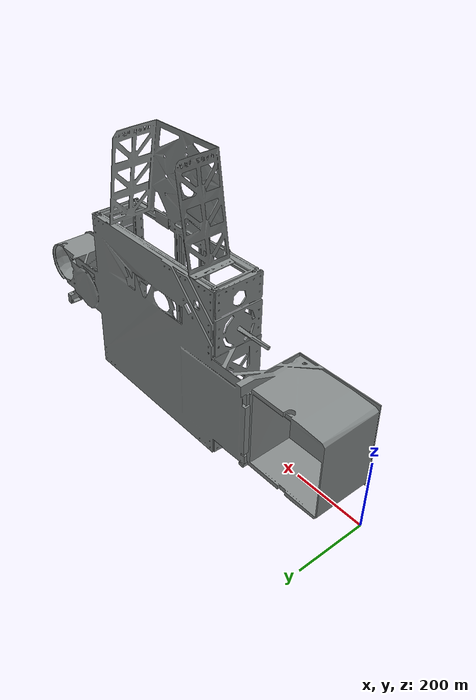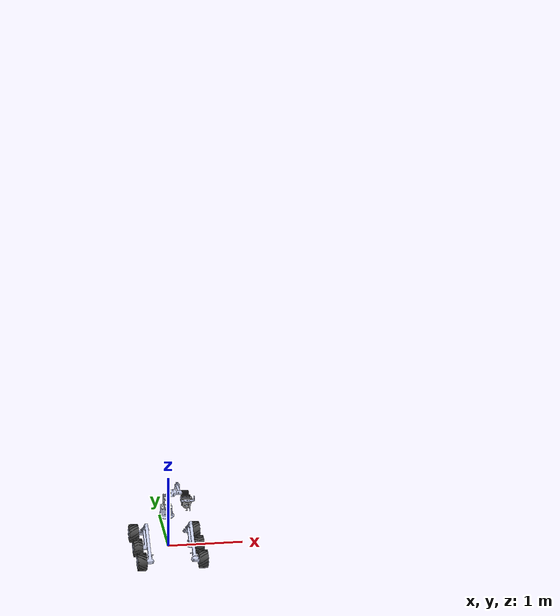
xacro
<?xml version="1.0"?>
<robot xmlns:xacro="http://www.ros.org/wiki/xacro" name="roar_full">

  <!-- The physical structure of the rover (chassis, wheels, transmissions) -->
  <xacro:include filename="$(find roar_simulation_full)/urdf/base/rover.xacro" />

  <!-- The physical structure of the arm (links, joints, transmissions) -->
  <xacro:include filename="$(find roar_simulation_full)/urdf/arm/arm.xacro" />

  <!-- First, build the physical rover base. -->
  <xacro:rover_base />

  <!-- Second, build the physical robotic arm. We use an empty prefix. -->
  <xacro:robotic_arm prefix="" />

  <!-- Third, create the "stitching" joint that rigidly connects the arm to the rover.
       This is the critical step that merges the two modules. -->
  <joint name="arm_mount_joint" type="fixed">
    <parent link="arm_mount_point" /> <!-- The connection point exposed by rover.xacro -->
    <child link="base_arm" />          <!-- The root link of the arm from arm.xacro -->
    <origin xyz="0 0 0" rpy="0 0 0" />  <!-- The offset is already defined in the arm_mount_point joint -->
  </joint>

</robot>

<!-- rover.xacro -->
<robot xmlns:xacro="http://www.ros.org/wiki/xacro" name="roar_rover">

  <xacro:include filename="$(find roar_simulation_full)/urdf/base/rover_control.xacro" />

  <xacro:macro name="rover_base">

    <link name="base_link">
      <inertial>
        <origin xyz="0.00469098688936509 -0.0777682848151969 0.324101627417335" rpy="0 0 0" />
        <mass value="10.0" />
        <inertia ixx="0.1" ixy="0.0" ixz="0.0" iyy="0.1" iyz="0.0" izz="0.1" />
      </inertial>
      <visual>
        <origin xyz="0 0 0" rpy="0 0 0" />
        <geometry>
          <mesh filename="file://$(find roar_simulation_full)/meshes/rover/base_link_visual.STL" />
        </geometry>
        <material name="light_grey">
          <color rgba="0.52941 0.54901 0.54901 1" />
        </material>
      </visual>
      <collision>
        <origin xyz="0 0 0" rpy="0 0 0" />
        <geometry>
          <mesh filename="file://$(find roar_simulation_full)/meshes/rover/base_link_collision.STL" />
        </geometry>
      </collision>
    </link>

    <link name="rocker_rhs">
      <inertial>
        <origin xyz="0.356634879782049 0.249567425783871 0.0168797911183071" rpy="0 0 0" />
        <mass value="1.55415245354649" />
        <inertia ixx="0.00304699343681013" ixy="-0.00122725683108501" ixz="-6.78110157247864E-05" iyy="0.00431671461496656" iyz="-4.53350583239748E-05" izz="0.00469688805108083" />
      </inertial>
      <visual>
        <origin xyz="0 0 0" rpy="0 0 0" />
        <geometry>
          <mesh filename="file://$(find roar_simulation_full)/meshes/rover/rocker_rhs_visual.STL" />
        </geometry>
        <material name="light_blue">
          <color rgba="0.79215 0.81960 0.93333 1" />
        </material>
      </visual>
      <collision>
        <origin xyz="0 0 0" rpy="0 0 0" />
        <geometry>
          <mesh filename="file://$(find roar_simulation_full)/meshes/rover/rocker_rhs_collision.STL" />
        </geometry>
      </collision>
    </link>

    <joint name="rocker_rhs_joint" type="fixed">
      <origin xyz="0.341 -0.00441357789442404 0.318458529702179" rpy="-1.5707963267949 0.0269760214941811 -1.5707963267949" />
      <parent link="base_link" />
      <child link="rocker_rhs" />
      <axis xyz="0 0 -1" />
    </joint>

    <link name="bogie_rhs">
      <inertial>
        <origin xyz="0.000413252708581058 0.147072285784854 0.121779882797586" rpy="0 0 0" />
        <mass value="2.56788752987332" />
        <inertia ixx="0.00417595671889658" ixy="-2.40383932788247E-07" ixz="7.46152900476444E-08" iyy="0.00445750777097546" iyz="-9.37581657450096E-05" izz="0.00354223475883779" />
      </inertial>
      <visual>
        <origin xyz="0 0 0" rpy="0 0 0" />
        <geometry>
          <mesh filename="file://$(find roar_simulation_full)/meshes/rover/bogie_rhs_visual.STL" />
        </geometry>
        <material name="light_blue">
          <color rgba="0.79215 0.81960 0.93333 1" />
        </material>
      </visual>
      <collision>
        <origin xyz="0 0 0" rpy="0 0 0" />
        <geometry>
          <mesh filename="file://$(find roar_simulation_full)/meshes/rover/bogie_rhs_collision.STL" />
        </geometry>
      </collision>
    </link>

    <joint name="bogie_rhs_joint" type="fixed">
      <origin xyz="-0.224229060097619 0.165122592734234 -0.0928547999999997" rpy="0 0 -0.03" />
      <parent link="rocker_rhs" />
      <child link="bogie_rhs" />
      <axis xyz="0 0 -1" />
    </joint>

    <link name="wheel_rhs_mid">
      <inertial>
        <origin xyz="3.05311331771918E-16 -0.00031009853866483 0.0600063600245654" rpy="0 0 0" />
        <mass value="1.5976653768916" />
        <inertia ixx="0.00836783341696594" ixy="7.18283939271647E-18" ixz="-5.84071446049636E-16" iyy="0.00836775197998545" iyz="-6.24418083574133E-14" izz="0.013244679799626" />
      </inertial>
      <visual>
        <origin xyz="0 0 0" rpy="0 0 0" />
        <geometry>
          <mesh filename="file://$(find roar_simulation_full)/meshes/rover/wheel_rhs_mid.STL" />
        </geometry>
        <material name="dark_grey">
          <color rgba="0.29803 0.29803 0.29803 1" />
        </material>
      </visual>
      <collision>
        <origin xyz="0 0 0" rpy="0 0 0" />
        <geometry>
          <mesh filename="file://$(find roar_simulation_full)/meshes/rover/wheel_rhs_mid_collision.STL" />
        </geometry>
      </collision>
    </link>

    <joint name="wheel_rhs_mid_joint" type="continuous">
      <origin xyz="0.229224601627686 0.160798282710695 0.105843639709434" rpy="0 0 3.12607538350607" />
      <parent link="bogie_rhs" />
      <child link="wheel_rhs_mid" />
      <axis xyz="0 0 -1" />
    </joint>

    <link name="wheel_rhs_front">
      <inertial>
        <origin xyz="-6.28397432798078E-05 -0.000299207692801798 0.0617344385469731" rpy="0 0 0" />
        <mass value="1.55166626304694" />
        <inertia ixx="0.00800333028314918" ixy="-1.61745154658915E-08" ixz="5.54140420044703E-13" iyy="0.00800325666613796" iyz="2.637538385541E-12" izz="0.0125934306153833" />
      </inertial>
      <visual>
        <origin xyz="0 0 0" rpy="0 0 0" />
        <geometry>
          <mesh filename="file://$(find roar_simulation_full)/meshes/rover/wheel_rhs_front.STL" />
        </geometry>
        <material name="dark_grey">
          <color rgba="0.29803 0.29803 0.29803 1" />
        </material>
      </visual>
      <collision>
        <origin xyz="0 0 0" rpy="0 0 0" />
        <geometry>
          <mesh filename="file://$(find roar_simulation_full)/meshes/rover/wheel_rhs_front_collision.STL" />
        </geometry>
      </collision>
    </link>

    <joint name="wheel_rhs_front_joint" type="continuous">
      <origin xyz="-0.229500390800753 0.160404414952893 0.104120372913068" rpy="0 0 -3.14159265358979" />
      <parent link="bogie_rhs" />
      <child link="wheel_rhs_front" />
      <axis xyz="0 0 -1" />
    </joint>

    <link name="wheel_rhs_rear">
      <inertial>
        <origin xyz="5.16253706450698E-15 0.00015154563885042 0.0600149113817935" rpy="0 0 0" />
        <mass value="1.55167119278224" />
        <inertia ixx="0.00800323403290157" ixy="-1.03184896315713E-16" ixz="-1.94336817583681E-17" iyy="0.00800315362181799" iyz="-1.09712890180285E-10" izz="0.0125935069824427" />
      </inertial>
      <visual>
        <origin xyz="0 0 0" rpy="0 0 0" />
        <geometry>
          <mesh filename="file://$(find roar_simulation_full)/meshes/rover/wheel_rhs_rear.STL" />
        </geometry>
        <material name="dark_grey">
          <color rgba="0.29803 0.29803 0.29803 1" />
        </material>
      </visual>
      <collision>
        <origin xyz="0 0 0" rpy="0 0 0" />
        <geometry>
          <mesh filename="file://$(find roar_simulation_full)/meshes/rover/wheel_rhs_rear_collision.STL" />
        </geometry>
      </collision>
    </link>

    <joint name="wheel_rhs_rear_joint" type="continuous">
      <origin xyz="0.46794017955705 0.307105950932406 0.0129798220506307" rpy="0 0 3.14159265358979" />
      <parent link="rocker_rhs" />
      <child link="wheel_rhs_rear" />
      <axis xyz="0 0 -1" />
    </joint>

    <link name="rocker_lhs">
      <inertial>
        <origin xyz="0.355676246263101 -0.251011188160812 0.114353485211955" rpy="0 0 0" />
        <mass value="1.55450623077954" />
        <inertia ixx="0.00304702979065891" ixy="0.00122725847821496" ixz="-6.7805504639355E-05" iyy="0.00431674151222301" iyz="4.53438210665476E-05" izz="0.00469693111237126" />
      </inertial>
      <visual>
        <origin xyz="0 0 0" rpy="0 0 0" />
        <geometry>
          <mesh filename="file://$(find roar_simulation_full)/meshes/rover/rocker_lhs_visual.STL" />
        </geometry>
        <material name="light_blue">
          <color rgba="0.79215 0.81960 0.93333 1" />
        </material>
      </visual>
      <collision>
        <origin xyz="0 0 0" rpy="0 0 0" />
        <geometry>
          <mesh filename="file://$(find roar_simulation_full)/meshes/rover/rocker_lhs.STL" />
        </geometry>
      </collision>
    </link>

    <joint name="rocker_lhs_joint" type="fixed">
      <origin xyz="-0.244499999999996 -0.00517486124912506 0.320045490177976" rpy="1.5707963267949 0.0269760214941811 -1.5707963267949" />
      <parent link="base_link" />
      <child link="rocker_lhs" />
      <axis xyz="0 0 1" />
    </joint>

    <link name="bogie_lhs">
      <inertial>
        <origin xyz="0.00196274820164133 -0.147059768544191 0.121779882817316" rpy="0 0 0" />
        <mass value="2.56788753304685" />
        <inertia ixx="0.0041760379642359" ixy="-4.78811399342551E-06" ixz="-1.58926496416294E-06" iyy="0.00445742650894979" iyz="9.37447259554026E-05" izz="0.00354223473986378" />
      </inertial>
      <visual>
        <origin xyz="0 0 0" rpy="0 0 0" />
        <geometry>
          <mesh filename="file://$(find roar_simulation_full)/meshes/rover/bogie_lhs_visual.STL" />
        </geometry>
        <material name="light_blue">
          <color rgba="0.79215 0.81960 0.93333 1" />
        </material>
      </visual>
      <collision>
        <origin xyz="0 0 0" rpy="0 0 0" />
        <geometry>
          <mesh filename="file://$(find roar_simulation_full)/meshes/rover/bogie_lhs_collision.STL" />
        </geometry>
      </collision>
    </link>

    <joint name="bogie_lhs_joint" type="fixed">
      <origin xyz="-0.224947261786088 -0.16672950973041 0.00464519999999913" rpy="0 0 0" />
      <parent link="rocker_lhs" />
      <child link="bogie_lhs" />
      <axis xyz="0 0 -1" />
    </joint>

    <link name="wheel_lhs_mid">
      <inertial>
        <origin xyz="8.32667268468867E-17 0.000310098538664483 0.0600061613680265" rpy="0 0 0" />
        <mass value="1.59766537689161" />
        <inertia ixx="0.00836783341696616" ixy="1.29476733188556E-16" ixz="-2.78394080503685E-16" iyy="0.00836775197998588" iyz="-6.25104164123782E-14" izz="0.0132446797996265" />
      </inertial>
      <visual>
        <origin xyz="0 0 0" rpy="0 0 0" />
        <geometry>
          <mesh filename="file://$(find roar_simulation_full)/meshes/rover/wheel_lhs_mid.STL" />
        </geometry>
        <material name="dark_grey">
          <color rgba="0.29803 0.29803 0.29803 1" />
        </material>
      </visual>
      <collision>
        <origin xyz="0 0 0" rpy="0 0 0" />
        <geometry>
          <mesh filename="file://$(find roar_simulation_full)/meshes/rover/wheel_lhs_mid_collision.STL" />
        </geometry>
      </collision>
    </link>

    <joint name="wheel_lhs_mid_joint" type="continuous">
      <origin xyz="0.232061767651008 -0.156675912982079 0.105848638897971" rpy="0 0 3.14159265358979" />
      <parent link="bogie_lhs" />
      <child link="wheel_lhs_mid" />
      <axis xyz="0 0 1" />
    </joint>

    <link name="wheel_lhs_front">
      <inertial>
        <origin xyz="4.44089209850063E-16 0.000305735786541028 0.060015644846366" rpy="0 0 0" />
        <mass value="1.55167119278224" />
        <inertia ixx="0.0080032340329016" ixy="8.92343020906058E-17" ixz="-4.04328578482084E-17" iyy="0.00800315362181802" iyz="-1.09712873056732E-10" izz="0.0125935069824427" />
      </inertial>
      <visual>
        <origin xyz="0 0 0" rpy="0 0 0" />
        <geometry>
          <mesh filename="file://$(find roar_simulation_full)/meshes/rover/wheel_lhs_front.STL" />
        </geometry>
        <material name="dark_grey">
          <color rgba="0.29803 0.29803 0.29803 1" />
        </material>
      </visual>
      <collision>
        <origin xyz="0 0 0" rpy="0 0 0" />
        <geometry>
          <mesh filename="file://$(find roar_simulation_full)/meshes/rover/wheel_lhs_front_collision.STL" />
        </geometry>
      </collision>
    </link>

    <joint name="wheel_lhs_front_joint" type="continuous">
      <origin xyz="-0.226596998316561 -0.164480412414379 0.105834821721209" rpy="0 0 3.14159265358979" />
      <parent link="bogie_lhs" />
      <child link="wheel_lhs_front" />
      <axis xyz="0 0 1" />
    </joint>

    <link name="wheel_lhs_rear">
      <inertial>
        <origin xyz="3.33066907387547E-16 0.000305735305071581 0.0617344149234693" rpy="0 0 0" />
        <mass value="1.55166626304695" />
        <inertia ixx="0.00800333368012843" ixy="1.76843939308345E-16" ixz="4.18511383343929E-16" iyy="0.00800325326915781" iyz="2.69448778130305E-12" izz="0.0125934306153827" />
      </inertial>
      <visual>
        <origin xyz="0 0 0" rpy="0 0 0" />
        <geometry>
          <mesh filename="file://$(find roar_simulation_full)/meshes/rover/wheel_lhs_rear.STL" />
        </geometry>
        <material name="dark_grey">
          <color rgba="0.29803 0.29803 0.29803 1" />
        </material>
      </visual>
      <collision>
        <origin xyz="0 0 0" rpy="0 0 0" />
        <geometry>
          <mesh filename="file://$(find roar_simulation_full)/meshes/rover/wheel_lhs_rear_collision.STL" />
        </geometry>
      </collision>
    </link>

    <joint name="wheel_lhs_rear_joint" type="continuous">
      <origin xyz="0.467221977868636 -0.308712867928559 0.108765573616487" rpy="0 0 3.14159265358979" />
      <parent link="rocker_lhs" />
      <child link="wheel_lhs_rear" />
      <axis xyz="0 0 1" />
    </joint>

    <link name="arm_mount_point"/>

    <joint name="rover_to_arm_mount" type="fixed">
      <parent link="base_link"/>
      <child link="arm_mount_point"/>
      <origin xyz="0.0 0.25 0.33" rpy="0 0 1.57"/>
    </joint>

    <xacro:rover_control />

  </xacro:macro>
</robot>

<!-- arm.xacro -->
<robot xmlns:xacro="http://www.ros.org/wiki/xacro" name="roar_arm">

  <xacro:macro name="robotic_arm" params="prefix">

    <link name="${prefix}base_arm">
      <inertial>
        <origin xyz="5.2096E-17 -5.1794E-16 0.067119" rpy="0 0 0" />
        <mass value="1.3975" />
        <inertia ixx="0.0060529" ixy="-7.9663E-19" ixz="1.4318E-18" iyy="0.0060532" iyz="-3.072E-17" izz="0.0086379" />
      </inertial>
      <visual>
        <origin xyz="0 0 0" rpy="0 0 0" />
        <geometry>
          <mesh filename="file://$(find roar_simulation)/meshes/arm/base_arm.STL" />
        </geometry>
        <material name="">
          <color rgba="0.79216 0.81961 0.93333 1" />
        </material>
      </visual>
      <collision>
        <origin xyz="0 0 0" rpy="0 0 0" />
        <geometry>
          <mesh filename="file://$(find roar_simulation)/meshes/arm/base_arm.STL" />
        </geometry>
      </collision>
    </link>

    <link name="${prefix}link_1">
      <inertial>
        <origin xyz="-0.015423 0.00053292 0.076165" rpy="0 0 0" />
        <mass value="0.69946" />
        <inertia ixx="0.0012889" ixy="9.1195E-07" ixz="-0.00011148" iyy="0.0019852" iyz="-6.3597E-06" izz="0.0013797" />
      </inertial>
      <visual>
        <origin xyz="0 0 0" rpy="0 0 0" />
        <geometry>
          <mesh filename="file://$(find roar_simulation)/meshes/arm/link_1.STL" />
        </geometry>
        <material name="">
          <color rgba="0.89804 0.91765 0.92941 1" />
        </material>
      </visual>
      <collision>
        <origin xyz="0 0 0" rpy="0 0 0" />
        <geometry>
          <mesh filename="file://$(find roar_simulation)/meshes/arm/link_1.STL" />
        </geometry>
      </collision>
    </link>
    <joint name="${prefix}joint_1" type="fixed">
      <origin xyz="0 0 0.133" rpy="0 0 0" />
      <parent link="${prefix}base_arm" />
      <child link="${prefix}link_1" />
      <axis xyz="0 0 1" />
    </joint>

    <link name="${prefix}link_2">
      <inertial>
        <origin xyz="-0.00045755 0.40328 0.043283" rpy="0 0 0" />
        <mass value="0.4979" />
        <inertia ixx="0.0016855" ixy="5.5179E-06" ixz="8.2239E-07" iyy="0.0004916" iyz="-3.1358E-05" izz="0.0016038" />
      </inertial>
      <visual>
        <origin xyz="0 0 0" rpy="0 0 0" />
        <geometry>
          <mesh filename="file://$(find roar_simulation)/meshes/arm/link_2.STL" />
        </geometry>
        <material name="">
          <color rgba="0.79216 0.81961 0.93333 1" />
        </material>
      </visual>
      <collision>
        <origin xyz="0 0 0" rpy="0 0 0" />
        <geometry>
          <mesh filename="file://$(find roar_simulation)/meshes/arm/link_2.STL" />
        </geometry>
      </collision>
    </link>
    <joint name="${prefix}joint_2" type="fixed">
      <origin xyz="0.035502 0 0.1489" rpy="1.6351 -1.0672 -0.073404" />
      <parent link="${prefix}link_1" />
      <child link="${prefix}link_2" />
      <axis xyz="0.035393 0 0.99937" />
    </joint>

    <link name="${prefix}link_3">
      <inertial>
        <origin xyz="-0.000291 -0.019482 0.039042" rpy="0 0 0" />
        <mass value="0.7923" />
        <inertia ixx="0.0012569" ixy="-2.4571E-06" ixz="4.6665E-06" iyy="0.001197" iyz="2.0351E-05" izz="0.0014787" />
      </inertial>
      <visual>
        <origin xyz="0 0 0" rpy="0 0 0" />
        <geometry>
          <mesh filename="file://$(find roar_simulation)/meshes/arm/link_3.STL" />
        </geometry>
        <material name="">
          <color rgba="0.79216 0.81961 0.93333 1" />
        </material>
      </visual>
      <collision>
        <origin xyz="0 0 0" rpy="0 0 0" />
        <geometry>
          <mesh filename="file://$(find roar_simulation)/meshes/arm/link_3.STL" />
        </geometry>
      </collision>
    </link>
    <joint name="${prefix}joint_3" type="fixed">
      <origin xyz="0 0.5275 0.1315" rpy="0 0 -1.0686" />
      <parent link="${prefix}link_2" />
      <child link="${prefix}link_3" />
      <axis xyz="0 0 -1" />
    </joint>

    <link name="${prefix}link_4">
      <inertial>
        <origin xyz="0.00071435 0.0082922 0.024799" rpy="0 0 0" />
        <mass value="0.6384" />
        <inertia ixx="0.0008605" ixy="-1.5754E-06" ixz="3.8008E-06" iyy="0.0008767" iyz="-1.4563E-05" izz="0.0010936" />
      </inertial>
      <visual>
        <origin xyz="0 0 0" rpy="0 0 0" />
        <geometry>
          <mesh filename="file://$(find roar_simulation)/meshes/arm/link_4.STL" />
        </geometry>
        <material name="">
          <color rgba="0.79216 0.81961 0.93333 1" />
        </material>
      </visual>
      <collision>
        <origin xyz="0 0 0" rpy="0 0 0" />
        <geometry>
          <mesh filename="file://$(find roar_simulation)/meshes/arm/link_4.STL" />
        </geometry>
      </collision>
    </link>
    <joint name="${prefix}joint_4" type="fixed">
      <origin xyz="6.8566E-05 -0.12961 0.10761" rpy="-0.50301 1.5354 -2.073" />
      <parent link="${prefix}link_3" />
      <child link="${prefix}link_4" />
      <axis xyz="-0.031013 0 -0.99952" />
    </joint>

    <link name="${prefix}link_5">
      <inertial>
        <origin xyz="8.5395E-05 0.0195 0.015426" rpy="0 0 0" />
        <mass value="0.072706" />
        <inertia ixx="9.5574E-05" ixy="-2.287E-08" ixz="2.2014E-09" iyy="8.2533E-05" iyz="-6.206E-06" izz="0.00016181" />
      </inertial>
      <visual>
        <origin xyz="0 0 0" rpy="0 0 0" />
        <geometry>
          <mesh filename="file://$(find roar_simulation)/meshes/arm/link_5.STL" />
        </geometry>
        <material name="">
          <color rgba="0.69804 0.69804 0.69804 1" />
        </material>
      </visual>
      <collision>
        <origin xyz="0 0 0" rpy="0 0 0" />
        <geometry>
          <mesh filename="file://$(find roar_simulation)/meshes/arm/link_5.STL" />
        </geometry>
      </collision>
    </link>
    <joint name="${prefix}joint_5" type="fixed">
      <origin xyz="-0.0010256 0.083 0.10269" rpy="-1.5692 0.030978 0.050701" />
      <parent link="${prefix}link_4" />
      <child link="${prefix}link_5" />
      <axis xyz="0 0 -1" />
    </joint>

    <link name="${prefix}link_6">
      <inertial>
        <origin xyz="-0.0017619 0.062304 -0.18532" rpy="0 0 0" />
        <mass value="0.14212" />
        <inertia ixx="0.00013968" ixy="3.672E-07" ixz="-4.6713E-08" iyy="0.00027464" iyz="-8.9751E-07" izz="0.00017205" />
      </inertial>
      <visual>
        <origin xyz="0 0 0" rpy="0 0 0" />
        <geometry>
          <mesh filename="file://$(find roar_simulation)/meshes/arm/link_6.STL" />
        </geometry>
        <material name="">
          <color rgba="0.1098 0.1098 0.1098 1" />
        </material>
      </visual>
      <collision>
        <origin xyz="0 0 0" rpy="0 0 0" />
        <geometry>
          <mesh filename="file://$(find roar_simulation)/meshes/arm/link_6.STL" />
        </geometry>
      </collision>
    </link>
    <joint name="${prefix}joint_6" type="fixed">
      <origin xyz="0 -0.050807 0.26285" rpy="0 0 1.560355" />
      <parent link="${prefix}link_5" />
      <child link="${prefix}link_6" />
      <axis xyz="0 0 -1" />
    </joint>

    <link name="${prefix}Right_ee">
      <inertial>
        <origin xyz="-0.00085871 0.15395 0.039904" rpy="0 0 0" />
        <mass value="0.12335" />
        <inertia ixx="0.00024187" ixy="-4.1406E-06" ixz="2.7514E-06" iyy="0.00013628" iyz="-3.1315E-06" izz="0.00016437" />
      </inertial>
      <visual>
        <origin xyz="0 0 0" rpy="0 0 0" />
        <geometry>
          <mesh filename="file://$(find roar_simulation)/meshes/arm/Right_ee.STL" />
        </geometry>
        <material name="">
          <color rgba="0.79216 0.81961 0.93333 1" />
        </material>
      </visual>
      <collision>
        <origin xyz="0 0 0" rpy="0 0 0" />
        <geometry>
          <mesh filename="file://$(find roar_simulation)/meshes/arm/Right_ee.STL" />
        </geometry>
      </collision>
    </link>
    <joint name="${prefix}joint_ree" type="fixed">
      <origin xyz="-0.030505 0.047691 -0.19085" rpy="1.5698 0 0.010445" />
      <parent link="${prefix}link_6" />
      <child link="${prefix}Right_ee" />
      <axis xyz="0 -0.0010429 1" />
    </joint>

    <link name="${prefix}Left_ee">
      <inertial>
        <origin xyz="0.0019003 -0.1544 -0.039691" rpy="0 0 0" />
        <mass value="0.12478" />
        <inertia ixx="0.00024968" ixy="-3.9203E-06" ixz="4.0773E-06" iyy="0.00014248" iyz="-4.0157E-06" izz="0.00016861" />
      </inertial>
      <visual>
        <origin xyz="0 0 0" rpy="0 0 0" />
        <geometry>
          <mesh filename="file://$(find roar_simulation)/meshes/arm/Left_ee.STL" />
        </geometry>
        <material name="">
          <color rgba="0.79216 0.81961 0.93333 1" />
        </material>
      </visual>
      <collision>
        <origin xyz="0 0 0" rpy="0 0 0" />
        <geometry>
          <mesh filename="file://$(find roar_simulation)/meshes/arm/Left_ee.STL" />
        </geometry>
      </collision>
    </link>
    <joint name="${prefix}joint_lee" type="fixed">
      <origin xyz="0.029492 0.048318 -0.19085" rpy="-1.5718 0 0.010445" />
      <parent link="${prefix}link_6" />
      <child link="${prefix}Left_ee" />
      <axis xyz="0 -0.0010429 1" />
    </joint>

  </xacro:macro>
</robot>
